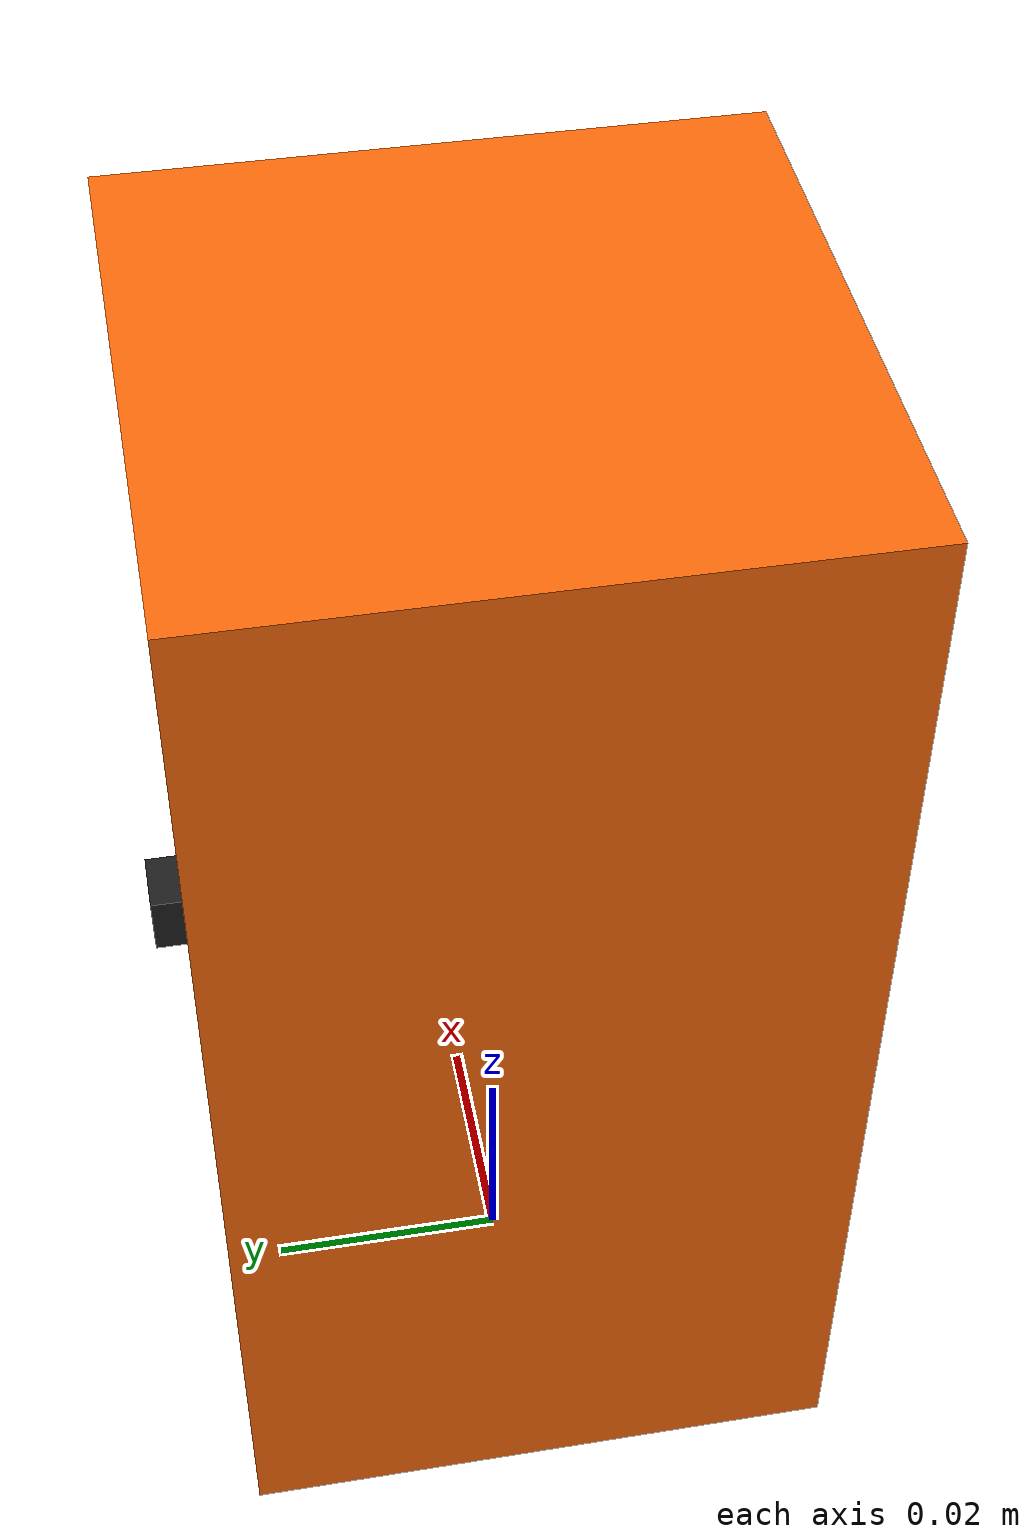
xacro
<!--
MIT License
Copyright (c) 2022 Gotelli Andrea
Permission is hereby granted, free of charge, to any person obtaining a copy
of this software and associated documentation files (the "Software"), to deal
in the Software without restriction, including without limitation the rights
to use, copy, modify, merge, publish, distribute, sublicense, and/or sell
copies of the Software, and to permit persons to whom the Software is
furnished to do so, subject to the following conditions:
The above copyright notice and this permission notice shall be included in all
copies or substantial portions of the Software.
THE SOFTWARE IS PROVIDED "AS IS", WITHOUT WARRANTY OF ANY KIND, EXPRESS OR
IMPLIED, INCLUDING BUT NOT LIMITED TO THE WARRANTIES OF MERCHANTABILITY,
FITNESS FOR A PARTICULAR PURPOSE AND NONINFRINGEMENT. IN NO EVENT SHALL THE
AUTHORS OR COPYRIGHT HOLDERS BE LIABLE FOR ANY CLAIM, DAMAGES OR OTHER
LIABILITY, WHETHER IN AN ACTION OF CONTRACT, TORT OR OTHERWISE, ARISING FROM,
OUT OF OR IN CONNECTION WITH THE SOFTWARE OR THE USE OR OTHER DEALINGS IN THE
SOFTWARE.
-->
<?xml version="1.0"?>

<!-- Revolute-Revolute Manipulator -->
<robot name="robot_limb" xmlns:xacro="http://www.ros.org/wiki/xacro">

    <!-- Constants for joint dimensions -->
    <xacro:property name="mass" value="0.1" />
    <xacro:property name="width" value="0.05" />
    <xacro:property name="height" value="0.1" />

    <!-- Position of the base joint -->
    <xacro:arg name="x" default="0.0"/>
    <xacro:arg name="y" default="0.0"/>
    <xacro:arg name="yaw" default="0.0"/>

    <!-- Orientation of the attach point -->
    <xacro:arg name="a_roll" default="0.0"/>
    <xacro:arg name="a_pitch" default="0.0"/>
    <xacro:arg name="a_yaw" default="0.0"/>

    <!-- ros_control plugin -->
    <gazebo>
        <plugin name="gazebo_ros_control" filename="libgazebo_ros_control.so">
            <robotSimType>gazebo_ros_control/DefaultRobotHWSim</robotSimType>
        </plugin>
    </gazebo>

    <!-- Used for fixing robot to Gazebo 'base_link' -->
    <link name="world"/>

    <!-- Base Link -->
    <link name="base_joint_body">
        <collision name="base_joint_body_collision">
            <origin xyz="0 0 ${height/2}" rpy="0 0 0"/>
            <geometry>
                <box size="${width} ${width} ${height}"/>
            </geometry>
        </collision>

        <visual name="base_joint_body_visual">
            <origin xyz="0 0 ${height/2}" rpy="0 0 0"/>
            <geometry>
                <box size="${width} ${width} ${height}"/>
            </geometry>
            <material name="orange"/>
        </visual>

        <inertial>
        <origin xyz="0 0 ${height/2}" rpy="0 0 0"/>
        <mass value="${mass}"/>
        <inertia
        ixx="${mass / 12.0 * (width*width + height*height)}" ixy="0.0" ixz="0.0"
        iyy="${mass / 12.0 * (height*height + width*width)}" iyz="0.0"
        izz="${mass / 12.0 * (width*width + width*width)}"/>
        </inertial>
    </link>

    <!-- Link1 Properties-->
    <gazebo reference="base_joint_body">
        <material>Gazebo/Orange</material>
    </gazebo>

    <material name="orange">
        <color rgba="${255/255} ${108/255} ${10/255} 1.0"/>
    </material>

    <joint name="base_joint" type="continuous">
        <parent link="world"/>
        <child link="base_joint_body"/>
        <origin xyz="$(arg x) $(arg y) 0" rpy="0 0 0"/>
        <axis xyz="0 0 1"/>
    </joint>

    <link name="attach_point">
        <collision name="attach_point_collision">
            <origin xyz="0 0 0" rpy="0 0 0"/>
            <geometry>
                <box size="${width/10} ${width/10} ${width/10}"/>
            </geometry>
        </collision>

        <visual name="attach_point_visual">
            <origin xyz="0 0 0" rpy="0 0 0"/>
            <geometry>
                <box size="${width/10} ${width/10} ${width/10}"/>
            </geometry>
        </visual>

        <inertial>
        <origin xyz="0 0 0" rpy="0 0 0"/>
        <mass value="${mass/10}"/>
        <inertia
        ixx="${mass / 12.0 * 2*(width*width/100)}" ixy="0.0" ixz="0.0"
        iyy="${mass / 12.0 * 2*(width*width/100)}" iyz="0.0"
        izz="${mass / 12.0 * 2*(width*width/100)}"/>
        </inertial>
    </link>

    <gazebo reference="attach_point">
        <material>Gazebo/Black</material>
    </gazebo>

    <joint name="fix_rod_to_joint" type="fixed">
        <parent link="base_joint_body"/>
        <child link="attach_point"/>
        <origin xyz="0 ${width/2} ${height/2}" rpy="$(arg a_roll) $(arg a_pitch) $(arg a_yaw)"/>
    </joint>

    <!-- Tell gazebo not to lump fixed joint togheter-->
    <gazebo reference="fix_rod_to_joint">
        <preserveFixedJoint>true</preserveFixedJoint>
    </gazebo>

    <transmission name="base_joint_transmission">
        <type>transmission_interface/SimpleTransmission</type>
        <joint name="base_joint">
            <hardwareInterface>hardware_interface/EffortJointInterface</hardwareInterface>
        </joint>
        <actuator name="base_joint_motor">
            <hardwareInterface>hardware_interface/EffortJointInterface</hardwareInterface>
            <mechanicalReduction>1</mechanicalReduction>
        </actuator>
    </transmission>

</robot>
